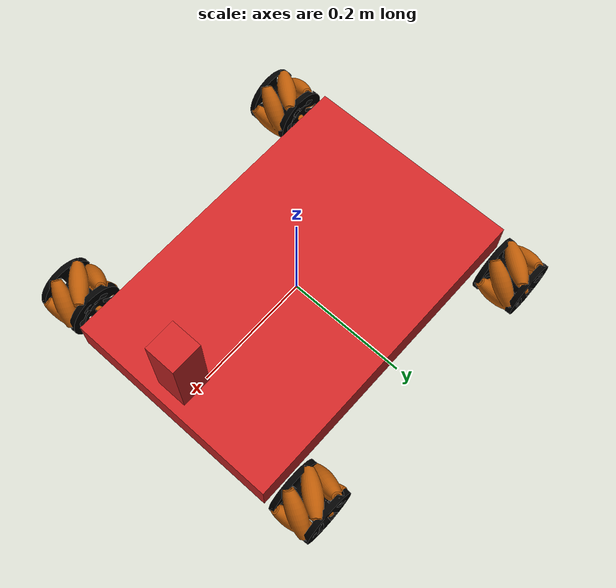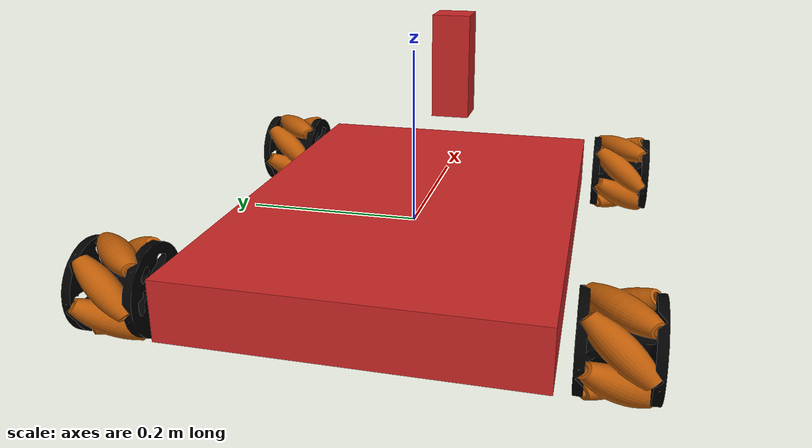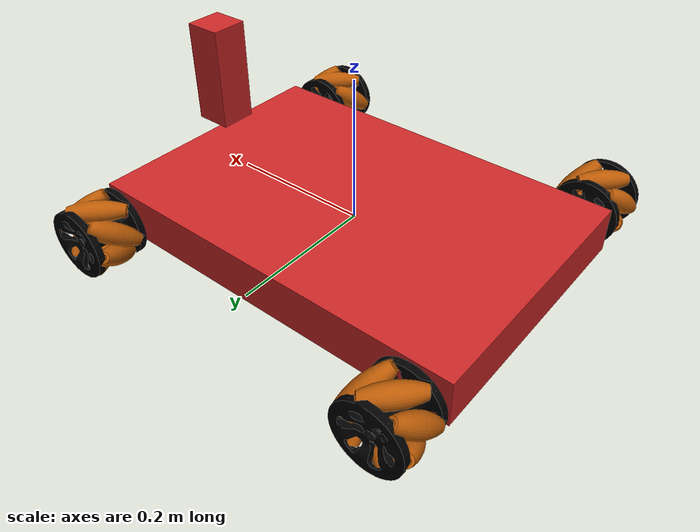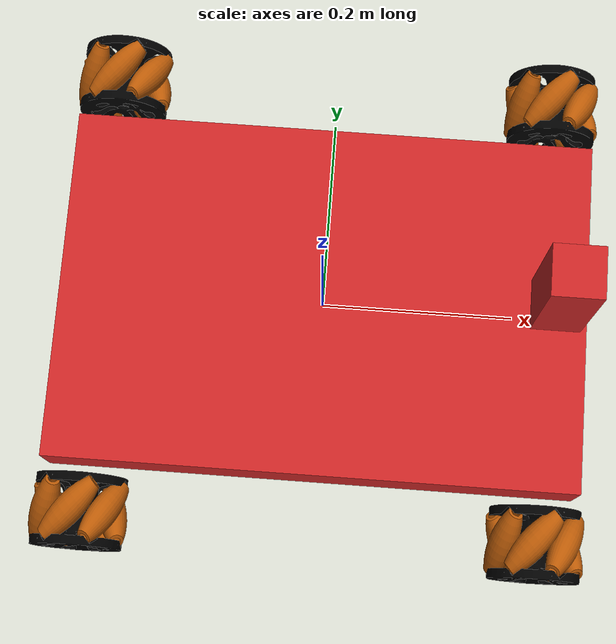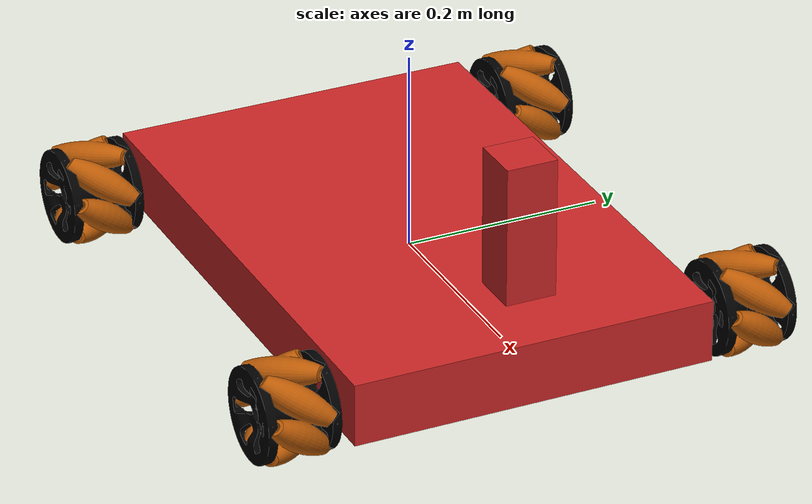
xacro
<?xml version="1.0"?>

<robot name="mecanum1" xmlns:xacro="http://www.ros.org/wiki/xacro">

  <!-- include gazebo plugins -->
  <xacro:include filename="$(find mecanum_sim)/urdf/mecanum.gazebo" />

  <xacro:property name="base_width" value="0.3683" />   <!-- 14.5 in -->
  <xacro:property name="base_length" value="0.549275" />  <!-- 21 5/8 in -->
  <xacro:property name="base_height" value="0.0635" />   <!-- 2.5 in  -->
  <xacro:property name="wheel_radius" value="0.1016" /> <!-- 4.0 in  -->
  <xacro:property name="wheel_width" value="0.0762" />  <!-- 3.0 in  -->
  <xacro:property name="wheel_gap" value="0.0508" />    <!-- 2.0 in  -->
  <xacro:property name="wheel_setback" value="0.041275" />    <!-- 1 5/8 in  -->
  <xacro:property name="lidar_width" value="0.0508" />    <!-- 2.0 in  -->
  <xacro:property name="lidar_length" value="0.0508" />    <!-- 2.0 in  -->
  <xacro:property name="lidar_height" value="0.1400" />    <!-- 3.0 in  -->
  <xacro:property name="lidar_setback" value="0.0127" />    <!-- 0.5 in  -->
  <xacro:property name="PI" value="3.1415926535897" />

  <!--~~~~~~~~~~~~~~~~~~~~~~~~ ~ ROBOT BASE ~ ~~~~~~~~~~~~~~~~~~~~~~~~~~~~~~-->

  <!-- Make a box for robot base -->
  <link name="base_link">

  	<!-- Draw imaginary box around the robot for collision detection -->
    <collision>
      <origin xyz="0 0 0.0" rpy="0 0 0"/>
      <geometry>
       <box size="${base_length} ${base_width} ${base_height}"/>
      </geometry>
    </collision>

    <!-- Describe how to draw the box in 3d -->
    <visual>
      <origin xyz="0 0 0.0" rpy="0 0 0"/>
      <geometry>
	       <box size="${base_length} ${base_width} ${base_height}"/>
      </geometry>
      <material name="red"/>
    </visual>

    <inertial>
      <mass value="1e-3" />
      <origin xyz="0 0 0" rpy="0 0 0"/>
      <inertia ixx="1e-6" ixy="0" ixz="0" iyy="1e-6" iyz="0" izz="1e-6" />
    </inertial>
  </link>

  <link name="fl_link">
      <visual>
        <geometry>
          <mesh filename="package://mecanum_sim/mesh/front-left_wheel.dae"/>
        </geometry>
        <origin rpy="0 0 0" xyz="0 0 0"/>
      </visual>

      <collision>
        <geometry>
          <cylinder length="${wheel_width}" radius="${wheel_radius}"/>
        </geometry>
        <origin rpy="${pi/2} 0 0" xyz="0 0 0"/>
      </collision>

      <inertial>
        <mass value="0.1" />
        <origin rpy="${pi/2} 0 0" xyz="0 0 0"/>
        <inertia ixx="1e-6" ixy="0" ixz="0" iyy="1e-6" iyz="0" izz="1e-6" />
      </inertial>
    </link>

    <link name="fr_link">
        <visual>
          <geometry>
            <mesh filename="package://mecanum_sim/mesh/front-left_wheel.dae"/>
          </geometry>
          <origin rpy="0 0 0" xyz="0 0 0"/>
        </visual>

        <collision>
          <geometry>
            <cylinder length="${wheel_width}" radius="${wheel_radius}"/>
          </geometry>
          <origin rpy="${pi/2} 0 0" xyz="0 0 0"/>
        </collision>

        <inertial>
          <mass value="0.1" />
          <origin rpy="${pi/2} 0 0" xyz="0 0 0"/>
          <inertia ixx="1e-6" ixy="0" ixz="0" iyy="1e-6" iyz="0" izz="1e-6" />
        </inertial>
      </link>
      <link name="bl_link">
          <visual>
            <geometry>
              <mesh filename="package://mecanum_sim/mesh/back-left_wheel.dae"/>
            </geometry>
            <origin rpy="0 0 0" xyz="0 0 0"/>
          </visual>

          <collision>
            <geometry>
              <cylinder length="${wheel_width}" radius="${wheel_radius}"/>
            </geometry>
            <origin rpy="${pi/2} 0 0" xyz="0 0 0"/>
          </collision>

          <inertial>
            <mass value="0.1" />
            <origin rpy="${pi/2} 0 0" xyz="0 0 0"/>
            <inertia ixx="1e-6" ixy="0" ixz="0" iyy="1e-6" iyz="0" izz="1e-6" />
          </inertial>
        </link>

        <link name="br_link">
            <visual>
              <geometry>
                <mesh filename="package://mecanum_sim/mesh/back-right_wheel.dae"/>
              </geometry>
              <origin rpy="0 0 0" xyz="0 0 0"/>
            </visual>

            <collision>
              <geometry>
                <cylinder length="${wheel_width}" radius="${wheel_radius}"/>
              </geometry>
              <origin rpy="${pi/2} 0 0" xyz="0 0 0"/>
            </collision>

            <inertial>
              <mass value="0.1" />
              <origin rpy="${pi/2} 0 0" xyz="0 0 0"/>
              <inertia ixx="1e-6" ixy="0" ixz="0" iyy="1e-6" iyz="0" izz="1e-6" />
            </inertial>
          </link>

  <!--~~~~~~~~~~~~~~~~~~~~~~~ ~ Lidar ~ ~~~~~~~~~~~~~~~~~~~~~~~~~~~~~-->
    <link name="laser_link">

    <collision>
      <origin xyz="0 0 0" rpy="0 0 0"/>
      <geometry>
       <box size="${lidar_length} ${lidar_width} ${lidar_height}"/>
      </geometry>
    </collision>

    <visual>
      <origin xyz="0 0 0" rpy="0 0 0"/>
      <geometry>
	       <box size="${lidar_length} ${lidar_width} ${lidar_height}"/>
      </geometry>
      <material name="red"/>
    </visual>

    <inertial>
      <mass value="1e-4" />
      <origin xyz="0 0 0" rpy="0 0 0"/>
      <inertia ixx="1e-6" ixy="0" ixz="0" iyy="1e-6" iyz="0" izz="1e-6" />
    </inertial>
  </link>

  <joint name="joint1" type="fixed">      <!-- Fused connection? (using continuous tilts view)-->
    <parent link="base_link"/>            <!--      robot link = parent     -->
    <child link="laser_link"/>     <!-- forward camera link = child  -->
    <origin xyz="${base_length/2 - lidar_length/2 - lidar_setback} 0 ${lidar_height}" rpy="0 0 0"/>   <!-- where child is relative to parent -->
    <axis xyz="0 0 0"/>                   <!-- ...describes the axis of rotation? -->
  </joint>

  <joint name="fl_joint" type="fixed">
      <parent link="base_link"/>
      <child link="fl_link"/>
      <origin rpy="0 0 0" xyz="${base_length/2 - wheel_setback} ${base_width/2 + wheel_gap} 0.0"/>
      <axis xyz="0 0 0"/>
  </joint>

  <joint name="fr_joint" type="fixed">
      <parent link="base_link"/>
      <child link="fr_link"/>
      <origin rpy="0 0 0" xyz="${base_length/2 - wheel_setback} ${-base_width/2 - wheel_gap} 0.0"/>
      <axis xyz="0 0 0"/>
  </joint>

  <joint name="bl_joint" type="fixed">
      <parent link="base_link"/>
      <child link="bl_link"/>
      <origin rpy="0 0 0" xyz="${-base_length/2 + wheel_setback} ${base_width/2 + wheel_gap} 0.0"/>
      <axis xyz="0 0 0"/>
  </joint>

  <joint name="br_joint" type="fixed">
      <parent link="base_link"/>
      <child link="br_link"/>
      <origin rpy="0 0 0" xyz="${-base_length/2 + wheel_setback} ${-base_width/2 - wheel_gap} 0.0"/>
      <axis xyz="0 0 0"/>
  </joint>

</robot>
